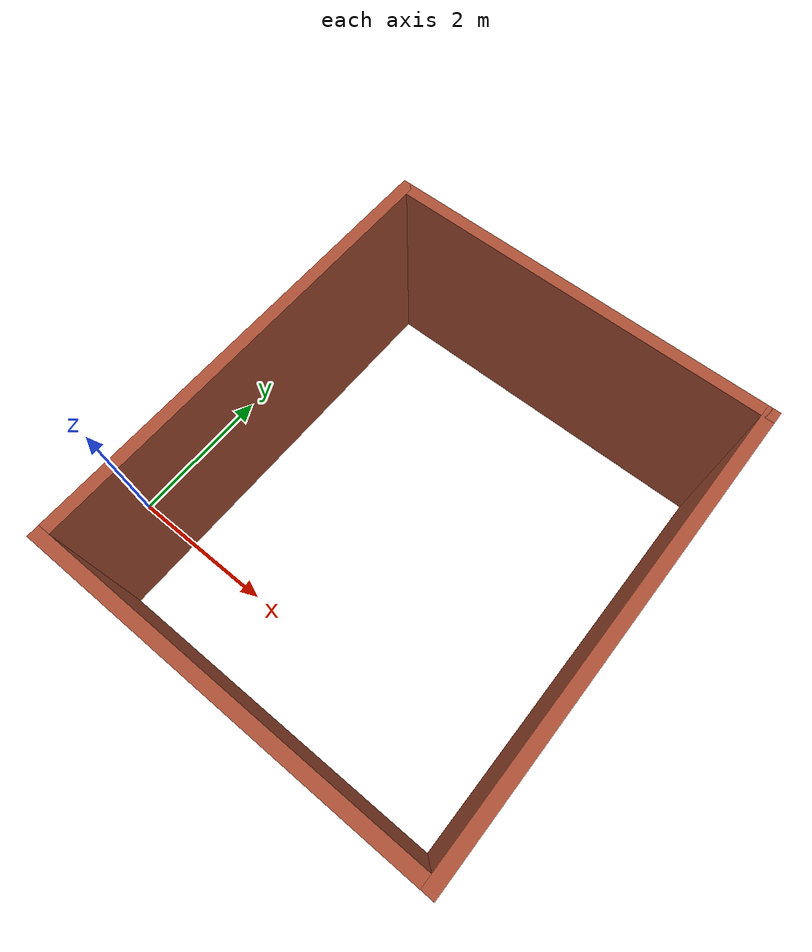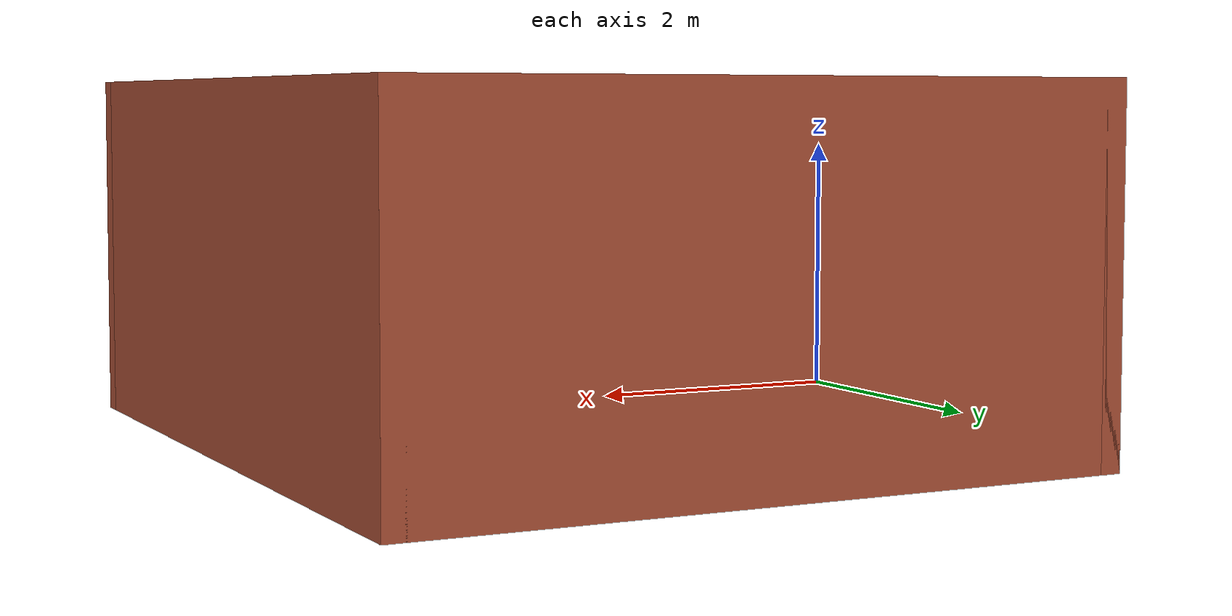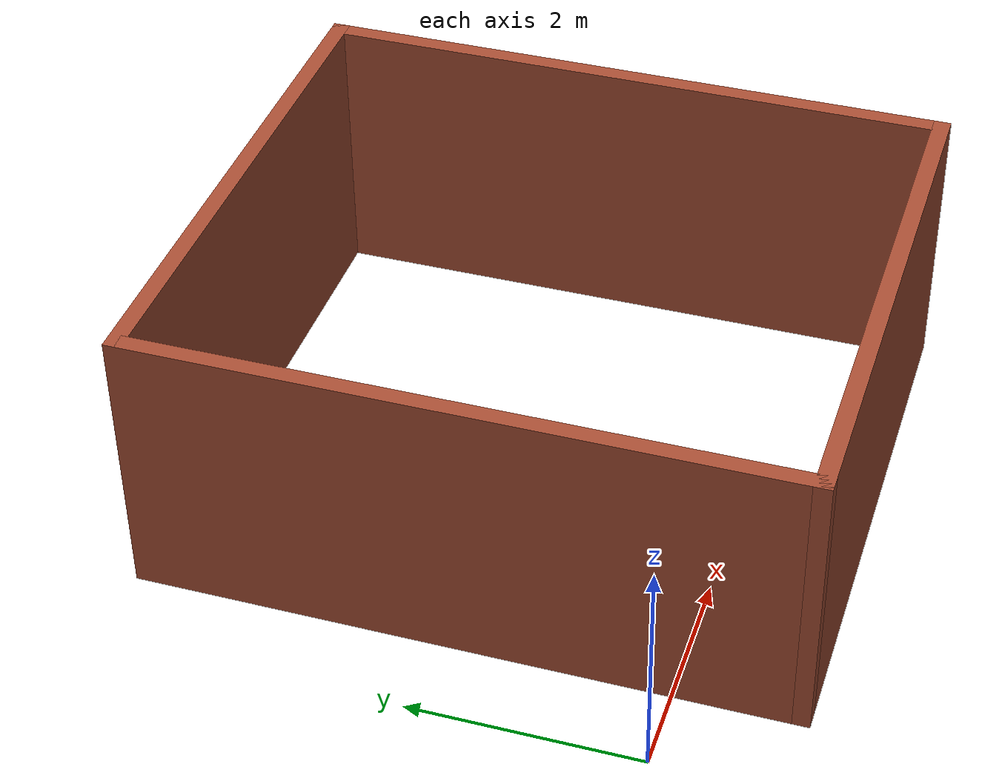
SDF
<?xml version='1.0'?>
<sdf version='1.6'>
  <model name='building'>
    <pose frame=''>3.215 1.75 0 0 -0 0</pose>
    <link name='Wall_0'>
      <collision name='Wall_0_Collision'>
        <geometry>
          <box>
            <size>5.75 0.15 2.5</size>
          </box>
        </geometry>
        <pose frame=''>0 0 1.25 0 -0 0</pose>
      </collision>
      <visual name='Wall_0_Visual'>
        <pose frame=''>0 0 1.25 0 -0 0</pose>
        <geometry>
          <box>
            <size>5.75 0.15 2.5</size>
          </box>
        </geometry>
        <material>
          <script>
            <uri>file://media/materials/scripts/gazebo.material</uri>
            <name>Gazebo/Bricks</name>
          </script>
          <ambient>0.435294 0.796078 0.67451 1</ambient>
        </material>
        <meta>
          <layer>0</layer>
        </meta>
      </visual>
      <pose frame=''>-2.425 0 0 0 -0 1.5708</pose>
    </link>
    <link name='Wall_1'>
      <collision name='Wall_1_Collision'>
        <geometry>
          <box>
            <size>5 0.15 2.5</size>
          </box>
        </geometry>
        <pose frame=''>0 0 1.25 0 -0 0</pose>
      </collision>
      <visual name='Wall_1_Visual'>
        <pose frame=''>0 0 1.25 0 -0 0</pose>
        <geometry>
          <box>
            <size>5 0.15 2.5</size>
          </box>
        </geometry>
        <material>
          <script>
            <uri>file://media/materials/scripts/gazebo.material</uri>
            <name>Gazebo/Bricks</name>
          </script>
          <ambient>0.435294 0.796078 0.67451 1</ambient>
        </material>
        <meta>
          <layer>0</layer>
        </meta>
      </visual>
      <pose frame=''>0 2.8 0 0 -0 0</pose>
    </link>
    <link name='Wall_4'>
      <collision name='Wall_4_Collision'>
        <geometry>
          <box>
            <size>5.75 0.15 2.5</size>
          </box>
        </geometry>
        <pose frame=''>0 0 1.25 0 -0 0</pose>
      </collision>
      <visual name='Wall_4_Visual'>
        <pose frame=''>0 0 1.25 0 -0 0</pose>
        <geometry>
          <box>
            <size>5.75 0.15 2.5</size>
          </box>
        </geometry>
        <material>
          <script>
            <uri>file://media/materials/scripts/gazebo.material</uri>
            <name>Gazebo/Bricks</name>
          </script>
          <ambient>1 1 1 1</ambient>
        </material>
        <meta>
          <layer>0</layer>
        </meta>
      </visual>
      <pose frame=''>2.425 0 0 0 -0 -1.5708</pose>
    </link>
    <link name='Wall_5'>
      <collision name='Wall_5_Collision'>
        <geometry>
          <box>
            <size>5 0.15 2.5</size>
          </box>
        </geometry>
        <pose frame=''>0 0 1.25 0 -0 0</pose>
      </collision>
      <visual name='Wall_5_Visual'>
        <pose frame=''>0 0 1.25 0 -0 0</pose>
        <geometry>
          <box>
            <size>5 0.15 2.5</size>
          </box>
        </geometry>
        <material>
          <script>
            <uri>file://media/materials/scripts/gazebo.material</uri>
            <name>Gazebo/Bricks</name>
          </script>
          <ambient>1 1 1 1</ambient>
        </material>
        <meta>
          <layer>0</layer>
        </meta>
      </visual>
      <pose frame=''>0 -2.8 0 0 -0 3.14159</pose>
    </link>
    <static>1</static>
  </model>
</sdf>
